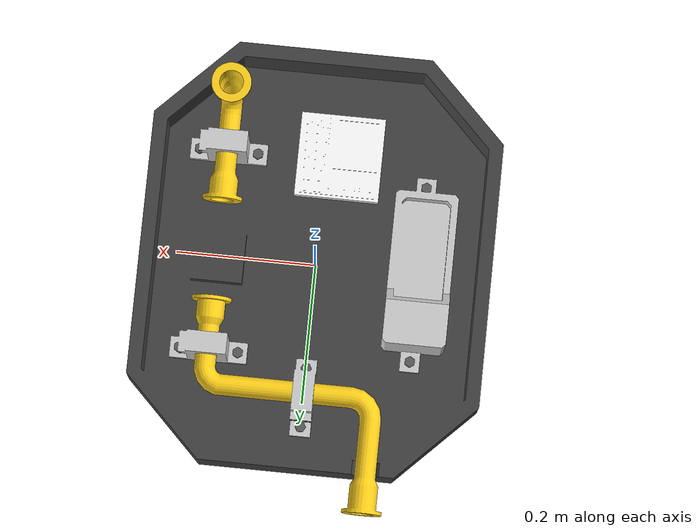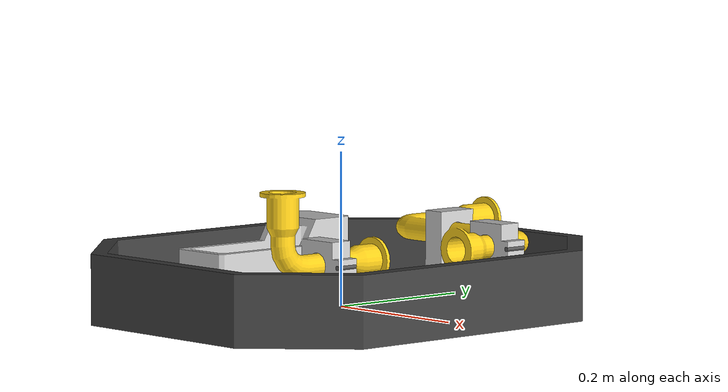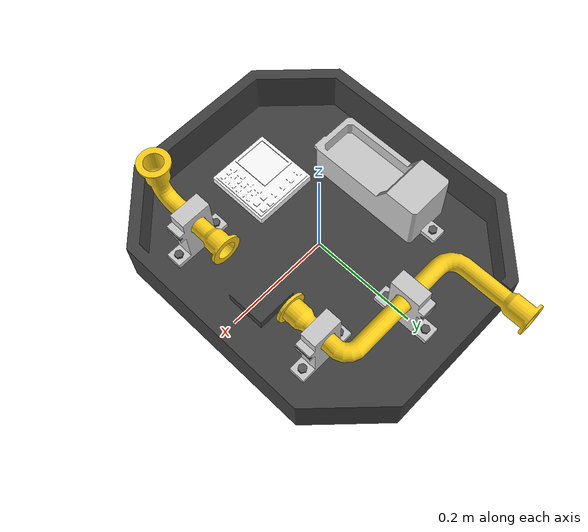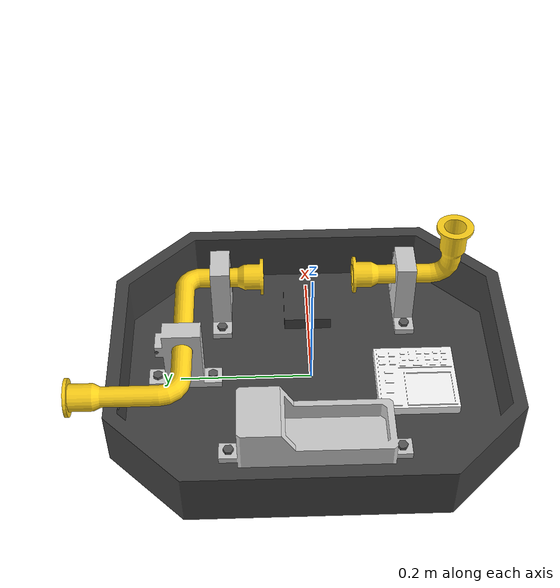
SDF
<?xml version="1.0" ?>
<sdf version="1.6">
  <model name="insert">
    <static>true</static>
    <allow_auto_disable>false</allow_auto_disable>

    <kinematic>0</kinematic>
    <inertial>
      <mass>20</mass>
      <inertia>
        <ixx>0.0009</ixx>
        <ixy>0</ixy>
        <ixz>0</ixz>
        <iyy>0.0009</iyy>
        <iyz>0</iyz>
        <izz>0.0012</izz>
      </inertia>
    </inertial>

    <link name="insert_link">
      <visual name="base">
        <geometry>
          <mesh>
            <uri>model://assembly_insert/meshes/insert_base.stl</uri>
          </mesh>
        </geometry>
        <material>
          <ambient>0.25 0.25 0.25 1.0</ambient>
          <diffuse>0.25 0.25 0.25 1.0</diffuse>
        </material>
      </visual>

      <visual name="mounts">
        <geometry>
          <mesh>
            <uri>model://assembly_insert/meshes/mounts.stl</uri>
          </mesh>
        </geometry>
        <material>
          <ambient>0.8 0.8 0.8 1.0</ambient>
          <diffuse>0.8 0.8 0.8 1.0</diffuse>
        </material>
      </visual>

      <visual name="hardware">
        <geometry>
          <mesh>
            <uri>model://assembly_insert/meshes/hardware.stl</uri>
          </mesh>
        </geometry>
        <material>
          <ambient>0.35 0.35 0.35 1.0</ambient>
          <diffuse>0.35 0.35 0.35 1.0</diffuse>
        </material>
      </visual>

      <visual name="pipe_1">
        <geometry>
          <mesh>
            <uri>model://assembly_insert/meshes/pipe_1.stl</uri>
          </mesh>
        </geometry>
        <material>
          <ambient>1.0 0.82 0.10 1.0</ambient>
          <diffuse>1.0 0.82 0.10 1.0</diffuse>
        </material>
      </visual>

      <visual name="pipe_2">
        <geometry>
          <mesh>
            <uri>model://assembly_insert/meshes/pipe_2.stl</uri>
          </mesh>
        </geometry>
        <material>
          <ambient>1.0 0.82 0.10 1.0</ambient>
          <diffuse>1.0 0.82 0.10 1.0</diffuse>
        </material>
      </visual>

      <visual name="screen">
        <geometry>
          <mesh>
            <uri>model://assembly_insert/meshes/screen.stl</uri>
          </mesh>
        </geometry>
        <material>
          <ambient>1.0 1.0 1.0 1.0</ambient>
          <diffuse>1.0 1.0 1.0 1.0</diffuse>
        </material>
      </visual>

      <collision name="base_collision">
        <geometry>
          <mesh>
            <uri>model://assembly_insert/meshes/insert_collision.stl</uri>
          </mesh>
        </geometry>
        <surface>
          <contact>
            <ode>
              <max_vel>0.0</max_vel>
              <min_depth>0.001</min_depth>
            </ode>
          </contact>
        </surface>
      </collision>
    </link>

    <link name="regulator_contact">
      <pose frame=''>0 0 0 0 0 0</pose>
      <collision name="regulator_contact">
        <geometry>
          <mesh>
            <uri>model://assembly_insert/meshes/regulator_contact.stl</uri>
          </mesh>
        </geometry>
        <surface>
          <contact>
            <ode>
              <max_vel>0.0</max_vel>
              <min_depth>0.001</min_depth>
            </ode>
          </contact>
        </surface>
      </collision>

      <sensor type="contact" name="regulator_contact_sensor">
        <update_rate>10</update_rate>
        <contact>
          <collision>regulator_contact</collision>
        </contact>
      </sensor>
    </link>

    <link name="battery_contact">
      <collision name="battery_contact">
        <geometry>
          <mesh>
            <uri>model://assembly_insert/meshes/battery_contact.stl</uri>
          </mesh>
        </geometry>
        <surface>
          <contact>
            <ode>
              <max_vel>0.0</max_vel>
              <min_depth>0.001</min_depth>
            </ode>
          </contact>
        </surface>
      </collision>

      <sensor type="contact" name="battery_contact_sensor">
        <update_rate>10</update_rate>
        <contact>
          <collision>battery_contact</collision>
        </contact>
      </sensor>
    </link>

    <link name="pump_contact">
      <pose>0 0 .002 0 0 0</pose>
      <collision name="pump_contact">
        <geometry>
          <mesh>
            <uri>model://assembly_insert/meshes/pump_contact.stl</uri>
          </mesh>
        </geometry>
        <surface>
          <contact>
            <ode>
              <max_vel>0.0</max_vel>
              <min_depth>0.001</min_depth>
            </ode>
          </contact>
        </surface>
      </collision>

      <sensor type="contact" name="pump_contact_sensor">
        <update_rate>10</update_rate>
        <contact>
          <collision>pump_contact</collision>
        </contact>
      </sensor>
    </link>

    <link name="sensor_contact">
      <collision name="sensor_contact">
        <geometry>
          <mesh>
            <uri>model://assembly_insert/meshes/sensor_contact.stl</uri>
          </mesh>
        </geometry>
        <surface>
          <contact>
            <ode>
              <max_vel>0.0</max_vel>
              <min_depth>0.001</min_depth>
            </ode>
          </contact>
        </surface>
      </collision>

      <sensor type="contact" name="sensor_contact_sensor">
        <update_rate>10</update_rate>
        <contact>
          <collision>sensor_contact</collision>
        </contact>
      </sensor>
    </link>

    <plugin filename="libassembly_lock_plugin.so" name="assembly_lock_pump">
      <assembly_part_type>pump</assembly_part_type>
    </plugin>
    <plugin filename="libassembly_lock_plugin.so" name="assembly_lock_regulator">
      <assembly_part_type>regulator</assembly_part_type>
    </plugin>
    <plugin filename="libassembly_lock_plugin.so" name="assembly_lock_sensor">
      <assembly_part_type>sensor</assembly_part_type>
    </plugin>
    <plugin filename="libassembly_lock_plugin.so" name="assembly_lock_battery">
      <assembly_part_type>battery</assembly_part_type>
    </plugin>
    <plugin filename="libassembly_state_publisher.so" name="assembly_state_publisher">
      <ros></ros>
    </plugin>
  </model>
</sdf>
